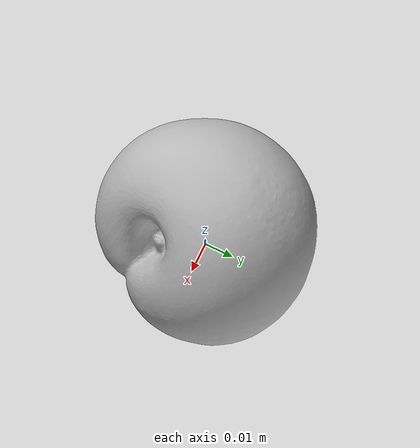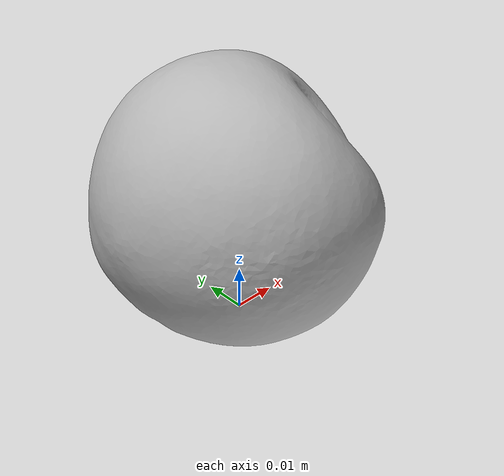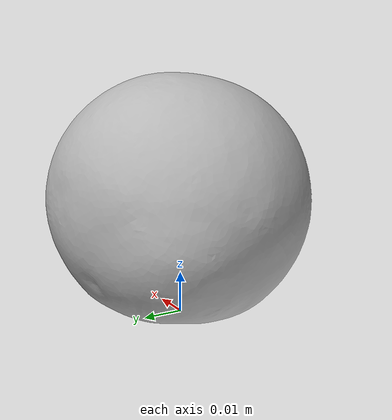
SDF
<?xml version="1.0" ?>
<sdf version='1.8'>
  <model name='ycb_015_peach'>
    <link name='body'>
      <inertial>
        <mass>0.033</mass>
        <pose>-0.000794325738 0.00115099716 0.0283916031 0 0 0</pose>
        <inertia>
          <ixx>1.22991776417e-05</ixx>
          <ixy>-5.54718403499e-07</ixy>
          <ixz>1.33134589292e-07</ixz>
          <iyy>1.19459549782e-05</iyy>
          <iyz>-1.60415392037e-07</iyz>
          <izz>1.27205747484e-05</izz>
        </inertia>
      </inertial>
      <visual name='ycb_015_peach_visual'>
        <pose>0.014253 -0.005633 0.000132 0 0 0</pose>
        <geometry>
          <mesh>
            <uri>model://ycb_015_peach/meshes/textured.dae</uri>
          </mesh>
        </geometry>
      </visual>
      <collision name='ycb_015_peach_collision'>
        <pose>0.014253 -0.005633 0.000132 0 0 0</pose>
        <geometry>
          <mesh>
            <uri>model://ycb_015_peach/meshes/nontextured.stl</uri>
          </mesh>
        </geometry>
        <max_contacts>10</max_contacts>
        <surface>
          <contact>
            <ode>
              <kp>1e15</kp>
              <kd>1e13</kd>
            </ode>
          </contact>
        </surface>
      </collision>
    </link>
  </model>
</sdf>
